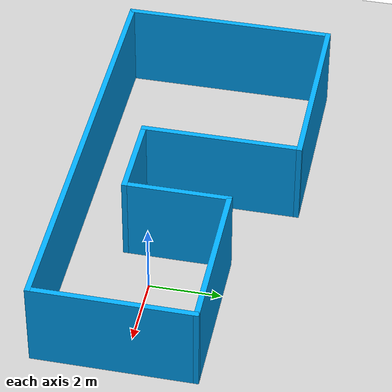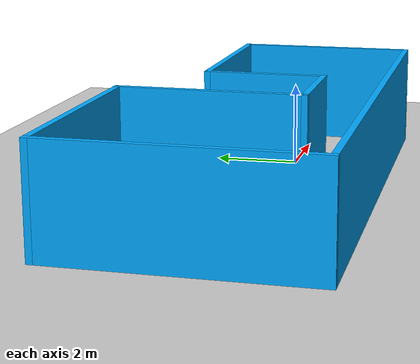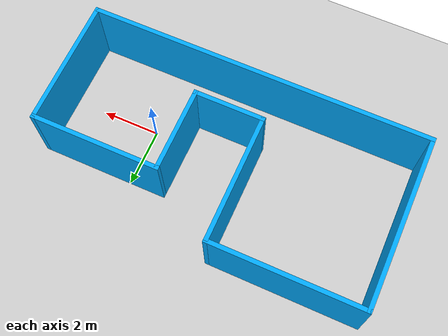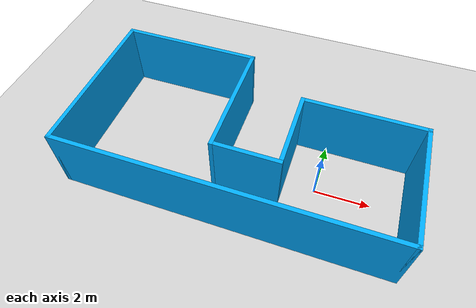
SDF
<sdf version="1.6">
 <world name="default">
  <model name="ground_plane">
   <static>1</static>
   <link name="link">
    <collision name="collision">
     <geometry><plane><normal>0 0 1</normal><size>100 100</size></plane></geometry>
     <surface><friction><ode><mu>100</mu><mu2>50</mu2></ode></friction></surface>
    </collision>
    <visual name="visual">
     <cast_shadows>0</cast_shadows>
     <geometry><plane><normal>0 0 1</normal><size>100 100</size></plane></geometry>
     <material>
      <script><uri>file://media/materials/scripts/gazebo.material</uri><name>Gazebo/Grey</name></script>
     </material>
    </visual>
   </link>
  </model>
  <model name="mybuilding">
   <pose>-2.77775 0.529178 0 0 -0 0</pose>
   <link name="Wall_10">
    <collision name="Wall_10_Collision">
     <geometry><box><size>6 0.15 2.5</size></box></geometry>
     <pose>0 0 1.25 0 -0 0</pose>
    </collision>
    <visual name="Wall_10_Visual">
     <pose>0 0 1.25 0 -0 0</pose>
     <geometry><box><size>6 0.15 2.5</size></box></geometry>
     <material>
      <script><uri>file://media/materials/scripts/gazebo.material</uri><name>Gazebo/Grey</name></script>
      <ambient>0 0.666667 1 1</ambient>
     </material>
    </visual>
    <pose>-5.925 0 0 0 0 -1.5708</pose>
   </link>
   <link name="Wall_11">
    <collision name="Wall_11_Collision">
     <geometry><box><size>12 0.15 2.5</size></box></geometry>
     <pose>0 0 1.25 0 -0 0</pose>
    </collision>
    <visual name="Wall_11_Visual">
     <pose>0 0 1.25 0 -0 0</pose>
     <geometry><box><size>12 0.15 2.5</size></box></geometry>
     <material>
      <script><uri>file://media/materials/scripts/gazebo.material</uri><name>Gazebo/Grey</name></script>
      <ambient>0 0.666667 1 1</ambient>
     </material>
    </visual>
    <pose>0 -2.925 0 0 -0 0</pose>
   </link>
   <link name="Wall_12">
    <collision name="Wall_12_Collision">
     <geometry><box><size>4.5 0.15 2.5</size></box></geometry>
     <pose>0 0 1.25 0 -0 0</pose>
    </collision>
    <visual name="Wall_12_Visual">
     <pose>0 0 1.25 0 -0 0</pose>
     <geometry><box><size>4.5 0.15 2.5</size></box></geometry>
     <material>
      <script><uri>file://media/materials/scripts/gazebo.material</uri><name>Gazebo/Grey</name></script>
      <ambient>0 0.666667 1 1</ambient>
     </material>
    </visual>
    <pose>5.925 -0.75 0 0 -0 1.5708</pose>
   </link>
   <link name="Wall_13">
    <collision name="Wall_13_Collision">
     <geometry><box><size>4.5 0.15 2.5</size></box></geometry>
     <pose>0 0 1.25 0 -0 0</pose>
    </collision>
    <visual name="Wall_13_Visual">
     <pose>0 0 1.25 0 -0 0</pose>
     <geometry><box><size>4.5 0.15 2.5</size></box></geometry>
     <material>
      <script><uri>file://media/materials/scripts/gazebo.material</uri><name>Gazebo/Grey</name></script>
      <ambient>0 0.666667 1 1</ambient>
     </material>
    </visual>
    <pose>3.75 1.425 0 0 -0 3.14159</pose>
   </link>
   <link name="Wall_14">
    <collision name="Wall_14_Collision">
     <geometry><box><size>3 0.15 2.5</size></box></geometry>
     <pose>0 0 1.25 0 -0 0</pose>
    </collision>
    <visual name="Wall_14_Visual">
     <pose>0 0 1.25 0 -0 0</pose>
     <geometry><box><size>3 0.15 2.5</size></box></geometry>
     <material>
      <script><uri>file://media/materials/scripts/gazebo.material</uri><name>Gazebo/Grey</name></script>
      <ambient>0 0.666667 1 1</ambient>
     </material>
    </visual>
    <pose>1.575 0 0 0 0 -1.5708</pose>
   </link>
   <link name="Wall_15">
    <collision name="Wall_15_Collision">
     <geometry><box><size>2.5 0.15 2.5</size></box></geometry>
     <pose>0 0 1.25 0 -0 0</pose>
    </collision>
    <visual name="Wall_15_Visual">
     <pose>0 0 1.25 0 -0 0</pose>
     <geometry><box><size>2.5 0.15 2.5</size></box></geometry>
     <material>
      <script><uri>file://media/materials/scripts/gazebo.material</uri><name>Gazebo/Grey</name></script>
      <ambient>0 0.666667 1 1</ambient>
     </material>
    </visual>
    <pose>0.4 -1.425 0 0 -0 3.14159</pose>
   </link>
   <link name="Wall_16">
    <collision name="Wall_16_Collision">
     <geometry><box><size>4.5 0.15 2.5</size></box></geometry>
     <pose>0 0 1.25 0 -0 0</pose>
    </collision>
    <visual name="Wall_16_Visual">
     <pose>0 0 1.25 0 -0 0</pose>
     <geometry><box><size>4.5 0.15 2.5</size></box></geometry>
     <material>
      <script><uri>file://media/materials/scripts/gazebo.material</uri><name>Gazebo/Grey</name></script>
      <ambient>0 0.666667 1 1</ambient>
     </material>
    </visual>
    <pose>-0.775 0.75 0 0 -0 1.5708</pose>
   </link>
   <link name="Wall_17">
    <collision name="Wall_17_Collision">
     <geometry><box><size>5.3 0.15 2.5</size></box></geometry>
     <pose>0 0 1.25 0 -0 0</pose>
    </collision>
    <visual name="Wall_17_Visual">
     <pose>0 0 1.25 0 -0 0</pose>
     <geometry><box><size>5.3 0.15 2.5</size></box></geometry>
     <material>
      <script><uri>file://media/materials/scripts/gazebo.material</uri><name>Gazebo/Grey</name></script>
      <ambient>0 0.666667 1 1</ambient>
     </material>
    </visual>
    <pose>-3.35 2.925 0 0 -0 3.14159</pose>
   </link>
   <static>1</static>
  </model>
 </world>
</sdf>
